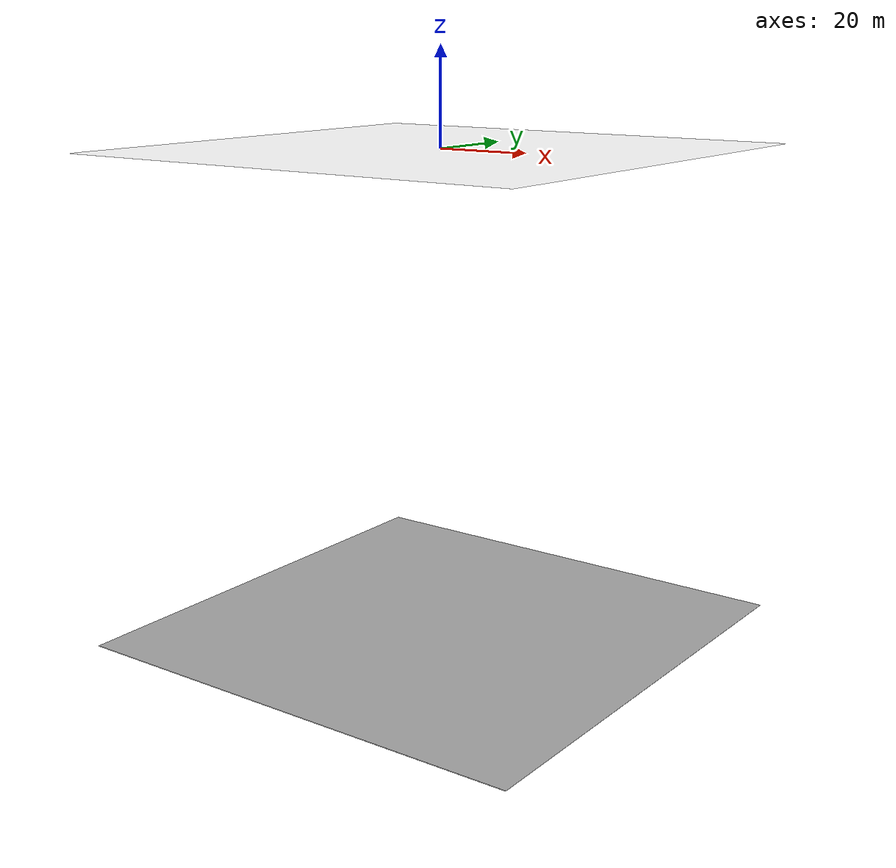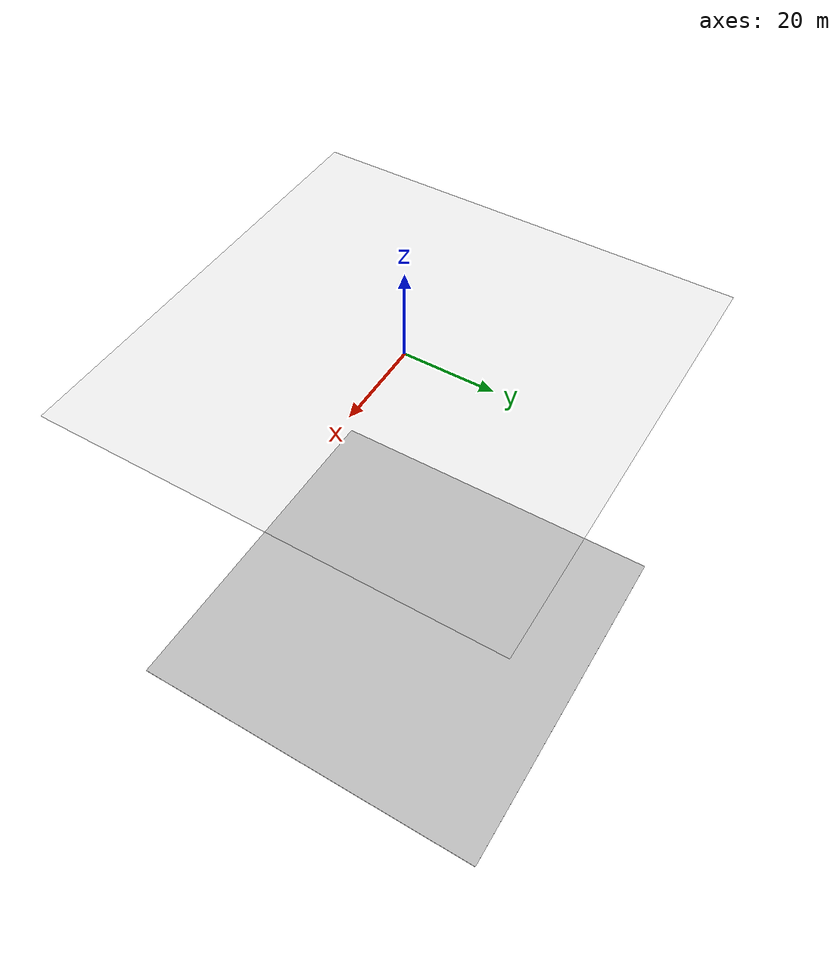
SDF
<?xml version="1.0" ?>

<sdf version="1.5">
  <model name="ocean_box">
    <static>true</static>
    <link name="link">
      <visual name="ground">
        <cast_shadows>false</cast_shadows>
        <pose>0 0 -100 0 0 0</pose>
        <geometry>
          <box>
            <size>100 100 .1</size>
          </box>
        </geometry>
        <material>
          <script>
            <uri>model://tol_ground/materials/scripts</uri>
            <uri>model://tol_ground/materials/textures</uri>
            <name>Floor/Concrete1</name>
          </script>
        </material>
      </visual>
      <visual name="ceiling">
        <cast_shadows>false</cast_shadows>
        <transparency>0.8</transparency>
        <pose>0 0 0 0 0 0</pose>
        <geometry>
          <box>
            <size>100 100 .1</size>
          </box>
        </geometry>
        <material>
          <script>
            <uri>model://sea_surface/materials/scripts</uri>
            <uri>model://sea_surface/materials/textures</uri>
            <name>UUVSimulator/SeaWall</name>
          </script>
        </material>
      </visual>
      <collision name="ground">
        <pose>0 0 -100 0 0 0</pose>
        <geometry>
          <box>
            <size>100 100 .1</size>
          </box>
        </geometry>
      </collision>
    </link>
  </model>
</sdf>
